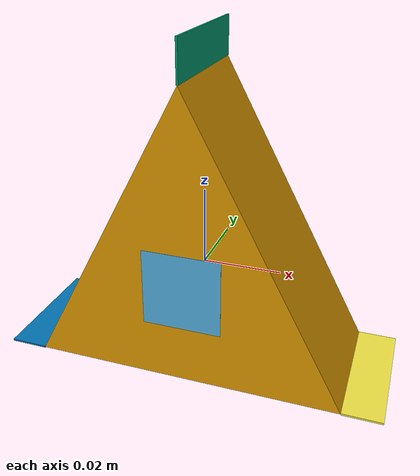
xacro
<?xml version="1.0"?>
<robot xmlns:xacro="http://www.ros.org/wiki/xacro" name="onigiri">
  <xacro:arg name="use_ar_marker" default="true"/>
  <xacro:arg name="marker_id" default="0"/>
  <xacro:macro name="box_inertial" params="mass x y z *origin">
    <inertial>
      <mass value="${mass}" />
      <xacro:insert_block name="origin" />
      <inertia  ixx="${mass*(y*y+z*z)/12}" ixy = "0" ixz = "0"
                iyy="${mass*(x*x+z*z)/12}" iyz = "0"
                izz="${mass*(x*x+y*y)/12}" />
    </inertial>
  </xacro:macro>
  <xacro:macro name="create_box" params="name *origin *box mass">
    <link name="${name}">
      <inertial>
      <xacro:insert_block name="origin"/>
      <mass value="${mass}"/>
        <inertia ixx="0.0001" ixy="0" ixz="0" iyy="0.0001" iyz="0" izz="0.0001"/>
      </inertial>
      <collision>
        <xacro:insert_block name="origin"/>
        <geometry>
          <xacro:insert_block name="box"/>
        </geometry>
      </collision>
      <visual>
        <xacro:insert_block name="origin"/>
        <geometry>
           <xacro:insert_block name="box"/>
        </geometry>
      </visual>
    </link>
  </xacro:macro>
  <xacro:macro name="onigiri">
    <link name="onigiri">
      <xacro:box_inertial mass="0.1" x="0.08" y="0.035" z="0.075" >
        <origin xyz="0 0 0" rpy="0 0 0"/>
      </xacro:box_inertial>
      <collision>
        <origin xyz="0 0 0"/>
        <geometry>
          <mesh filename="package://fcsc_description/mesh/onigiri_edit.stl" scale="1 1 1"/>
        </geometry>
      </collision>
      <visual>
        <origin xyz="0 0 0"/>
        <geometry>
          <mesh filename="package://fcsc_description/mesh/onigiri_edit.stl" scale="1 1 1"/>
        </geometry>
      </visual>
    </link>
    <gazebo reference="onigiri">
      <mu1 value="100000000000000000" />
      <mu2 value="100000000000000000" />
      <kp value="1000000"/>
      <kd value="1.0"/>
      <minDepth value="0.01"/>
      <maxContacts>1000</maxContacts>
    </gazebo>

    <xacro:if value="$(arg use_ar_marker)">
      <link name="ar_marker">
        <xacro:box_inertial mass="0.0000001" x="0.02" y="0.02" z="0.0001">
          <origin xyz="0 0 0" rpy="0 0 1.5707" />
        </xacro:box_inertial>
        <collision>
          <origin xyz="0 0 0" rpy="0 0 1.5707"/>
          <geometry>
            <box size="0.02 0.02 0.0001"/>
          </geometry>
        </collision>
        <visual>
          <origin xyz="0 0 0" rpy="0 0 1.5707"/>
          <geometry>
            <box size="0.02 0.02 0.0001"/>
          </geometry>
          <material name="ar_marker_0">
            <texture filename="package://fcsc_description/image/MarkerData_0.png"/>
          </material>
        </visual>
      </link>
      <gazebo reference="ar_marker">
        <material>ar_marker_$(arg marker_id)</material>
      </gazebo>
      <joint name="ar" type="fixed">
        <parent link="onigiri"/>
        <child link="ar_marker"/>
        <origin xyz="0 -0.0175 0" rpy="1.5707 0 0"/>
      </joint>
    </xacro:if>
    <xacro:create_box name="film_top" mass="0.00001">
    	<origin xyz="0 0 0.005" rpy="0 0 0"/>
    	<box size="0.0005 0.035 0.01"/>
    </xacro:create_box>
    <joint name="film_joint_1" type="revolute">
    	<parent link="onigiri"/>
    	<child link="film_top"/>
    	<axis xyz="0 1 0"/>
    	<origin xyz="0 0 ${0.075*2/3}" rpy="0 0 0" />
    	<limit upper="0.5235" lower="-0.5235" effort="0" velocity="0"/>
    </joint>
    <xacro:create_box name="film_side_1" mass="0.00001">
    	<origin xyz="0.005 0 0" rpy="0 0 0"/>
    	<box size="0.01 0.035 0.0005"/>
    </xacro:create_box>
    <joint name="film_joint_2" type="revolute">
    	<parent link="onigiri"/>
    	<child link="film_side_1"/>
    	<axis xyz="0 1 0"/>
    	<origin xyz="0.04 0 ${-0.075/3}" rpy="0 0 0" />
    	<limit upper="0.5235" lower="-0.5235" effort="0" velocity="0"/>
    </joint>
    <xacro:create_box name="film_side_2" mass="0.00001">
    	<origin xyz="-0.005 0 0" rpy="0 0 0"/>
    	<box size="0.01 0.035 0.0005"/>
    </xacro:create_box>
    <joint name="film_joint_3" type="revolute">
    	<parent link="onigiri"/>
    	<child link="film_side_2"/>
    	<axis xyz="0 1 0"/>
    	<origin xyz="-0.04 0 ${-0.075/3}" rpy="0 0 0" />
    	<limit upper="0.5235" lower="-0.5235" effort="0" velocity="0"/>
    </joint>
  </xacro:macro>
  <xacro:onigiri/>
</robot>
